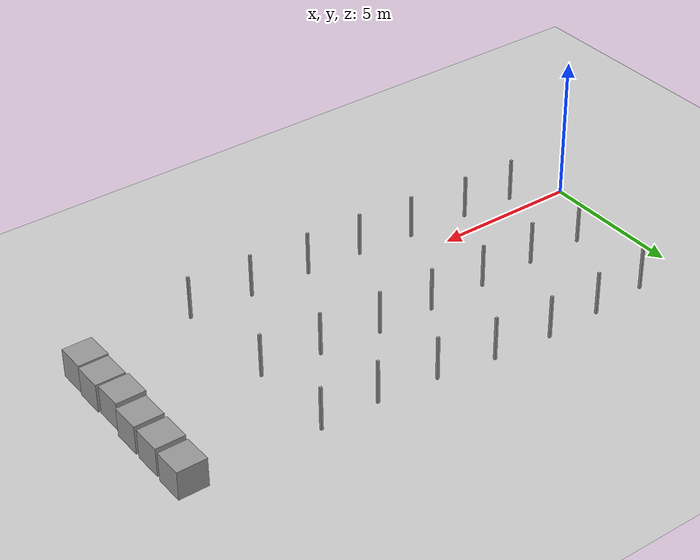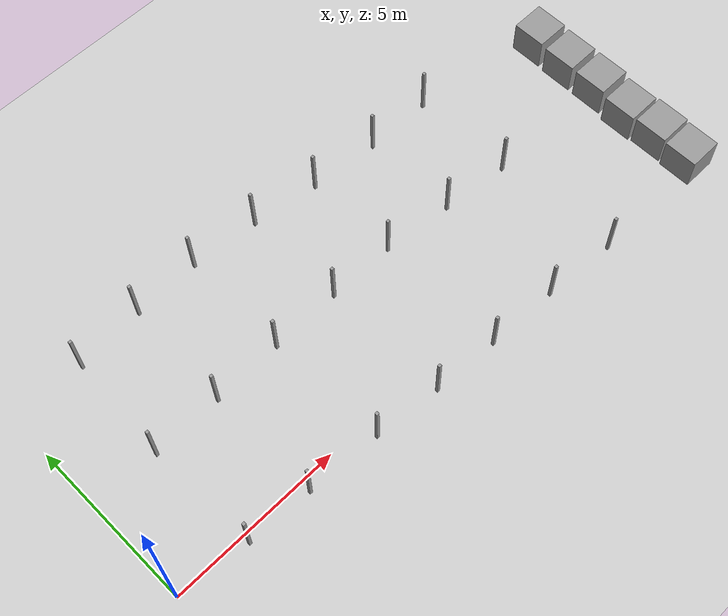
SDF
<sdf version="1.7">
 <world name="default">
  <light name="sun" type="directional">
   <pose>0 0 10 0 -0 0</pose>
   <diffuse>0.8 0.8 0.8 1</diffuse>
   <specular>0.2 0.2 0.2 1</specular>
   <attenuation>
    <range>1000</range>
    <constant>0.9</constant>
    <linear>0.01</linear>
    <quadratic>0.001</quadratic>
   </attenuation>
   <direction>-0.5 0.1 -0.9</direction>
   <spot><inner_angle>0</inner_angle><outer_angle>0</outer_angle><falloff>0</falloff></spot>
  </light>
  <model name="ground_plane">
   <static>1</static>
   <link name="link">
    <collision name="collision">
     <geometry><plane><normal>0 0 1</normal><size>100 100</size></plane></geometry>
     <surface><friction><ode><mu>100</mu><mu2>50</mu2></ode></friction></surface>
    </collision>
    <visual name="visual">
     <cast_shadows>0</cast_shadows>
     <geometry><plane><normal>0 0 1</normal><size>100 100</size></plane></geometry>
     <material>
      <script><uri>file://media/materials/scripts/gazebo.material</uri><name>Gazebo/Grey</name></script>
     </material>
    </visual>
   </link>
  </model>
  <gravity>0 0 -9.8</gravity>
  <magnetic_field>6e-06 2.3e-05 -4.2e-05</magnetic_field>
  <atmosphere type="adiabatic"/>
  <physics type="dartsim">
   <max_step_size>0.001</max_step_size>
   <real_time_factor>1</real_time_factor>
   <real_time_update_rate>1000</real_time_update_rate>
  </physics>
  <scene><ambient>0.4 0.4 0.4 1</ambient><background>0.7 0.7 0.7 1</background><shadows>1</shadows></scene>
  <audio><device>default</device></audio>
  <spherical_coordinates>
   <surface_model>EARTH_WGS84</surface_model>
   <latitude_deg>0</latitude_deg>
   <longitude_deg>0</longitude_deg>
   <elevation>0</elevation>
   <heading_deg>0</heading_deg>
  </spherical_coordinates>
  <model name="unit_box">
   <pose>2.02821 -0.339734 1.0946 -1.2e-05 -3e-06 -0.003196</pose>
   <link name="link">
    <inertial>
     <mass>1</mass>
     <inertia>
      <ixx>0.166667</ixx>
      <ixy>0</ixy>
      <ixz>0</ixz>
      <iyy>0.166667</iyy>
      <iyz>0</iyz>
      <izz>0.166667</izz>
     </inertia>
    </inertial>
    <collision name="collision"><geometry><box><size>0.083 0.082 1.532</size></box></geometry></collision>
    <visual name="visual">
     <geometry><box><size>0.083 0.082 1.532</size></box></geometry>
     <material>
      <script><name>Gazebo/Grey</name><uri>file://media/materials/scripts/gazebo.material</uri></script>
     </material>
    </visual>
   </link>
  </model>
  <model name="unit_box_clone">
   <pose>3.91155 -0.438109 1.0946 1e-06 1e-06 -0.003518</pose>
   <link name="link">
    <inertial>
     <mass>1</mass>
     <inertia>
      <ixx>0.166667</ixx>
      <ixy>0</ixy>
      <ixz>0</ixz>
      <iyy>0.166667</iyy>
      <iyz>0</iyz>
      <izz>0.166667</izz>
     </inertia>
    </inertial>
    <collision name="collision"><geometry><box><size>0.083 0.082 1.532</size></box></geometry></collision>
    <visual name="visual">
     <geometry><box><size>0.083 0.082 1.532</size></box></geometry>
     <material>
      <script><name>Gazebo/Grey</name><uri>file://media/materials/scripts/gazebo.material</uri></script>
     </material>
    </visual>
   </link>
  </model>
  <model name="unit_box_clone_0">
   <pose>6.06004 -0.577232 1.0946 1e-06 3.1e-05 -0.001422</pose>
   <link name="link">
    <inertial>
     <mass>1</mass>
     <inertia>
      <ixx>0.166667</ixx>
      <ixy>0</ixy>
      <ixz>0</ixz>
      <iyy>0.166667</iyy>
      <iyz>0</iyz>
      <izz>0.166667</izz>
     </inertia>
    </inertial>
    <collision name="collision"><geometry><box><size>0.083 0.082 1.532</size></box></geometry></collision>
    <visual name="visual">
     <geometry><box><size>0.083 0.082 1.532</size></box></geometry>
     <material>
      <script><name>Gazebo/Grey</name><uri>file://media/materials/scripts/gazebo.material</uri></script>
     </material>
    </visual>
   </link>
  </model>
  <model name="unit_box_clone_1">
   <pose>8.0051 -0.770855 1.0946 6e-06 0 -0.001883</pose>
   <link name="link">
    <inertial>
     <mass>1</mass>
     <inertia>
      <ixx>0.166667</ixx>
      <ixy>0</ixy>
      <ixz>0</ixz>
      <iyy>0.166667</iyy>
      <iyz>0</iyz>
      <izz>0.166667</izz>
     </inertia>
    </inertial>
    <collision name="collision"><geometry><box><size>0.083 0.082 1.532</size></box></geometry></collision>
    <visual name="visual">
     <geometry><box><size>0.083 0.082 1.532</size></box></geometry>
     <material>
      <script><name>Gazebo/Grey</name><uri>file://media/materials/scripts/gazebo.material</uri></script>
     </material>
    </visual>
   </link>
  </model>
  <model name="unit_box_clone_2">
   <pose>9.95016 -0.887959 1.0946 -1e-06 -3e-06 -0.002604</pose>
   <link name="link">
    <inertial>
     <mass>1</mass>
     <inertia>
      <ixx>0.166667</ixx>
      <ixy>0</ixy>
      <ixz>0</ixz>
      <iyy>0.166667</iyy>
      <iyz>0</iyz>
      <izz>0.166667</izz>
     </inertia>
    </inertial>
    <collision name="collision"><geometry><box><size>0.083 0.082 1.532</size></box></geometry></collision>
    <visual name="visual">
     <geometry><box><size>0.083 0.082 1.532</size></box></geometry>
     <material>
      <script><name>Gazebo/Grey</name><uri>file://media/materials/scripts/gazebo.material</uri></script>
     </material>
    </visual>
   </link>
  </model>
  <model name="unit_box_clone_3">
   <pose>12.0514 -0.969661 1.0946 3.1e-05 1e-06 -0.003516</pose>
   <link name="link">
    <inertial>
     <mass>1</mass>
     <inertia>
      <ixx>0.166667</ixx>
      <ixy>0</ixy>
      <ixz>0</ixz>
      <iyy>0.166667</iyy>
      <iyz>0</iyz>
      <izz>0.166667</izz>
     </inertia>
    </inertial>
    <collision name="collision"><geometry><box><size>0.083 0.082 1.532</size></box></geometry></collision>
    <visual name="visual">
     <geometry><box><size>0.083 0.082 1.532</size></box></geometry>
     <material>
      <script><name>Gazebo/Grey</name><uri>file://media/materials/scripts/gazebo.material</uri></script>
     </material>
    </visual>
   </link>
  </model>
  <model name="unit_box_clone_4">
   <pose>14.192 -1.13159 1.0946 3e-06 0 -0.002015</pose>
   <link name="link">
    <inertial>
     <mass>1</mass>
     <inertia>
      <ixx>0.166667</ixx>
      <ixy>0</ixy>
      <ixz>0</ixz>
      <iyy>0.166667</iyy>
      <iyz>0</iyz>
      <izz>0.166667</izz>
     </inertia>
    </inertial>
    <collision name="collision"><geometry><box><size>0.083 0.082 1.532</size></box></geometry></collision>
    <visual name="visual">
     <geometry><box><size>0.083 0.082 1.532</size></box></geometry>
     <material>
      <script><name>Gazebo/Grey</name><uri>file://media/materials/scripts/gazebo.material</uri></script>
     </material>
    </visual>
   </link>
  </model>
  <model name="unit_box_clone_5">
   <pose>1.90923 2.92163 1.09459 -4e-06 1e-06 -0.00242</pose>
   <link name="link">
    <inertial>
     <mass>1</mass>
     <inertia>
      <ixx>0.166667</ixx>
      <ixy>0</ixy>
      <ixz>0</ixz>
      <iyy>0.166667</iyy>
      <iyz>0</iyz>
      <izz>0.166667</izz>
     </inertia>
    </inertial>
    <collision name="collision"><geometry><box><size>0.083 0.082 1.532</size></box></geometry></collision>
    <visual name="visual">
     <geometry><box><size>0.083 0.082 1.532</size></box></geometry>
     <material>
      <script><name>Gazebo/Grey</name><uri>file://media/materials/scripts/gazebo.material</uri></script>
     </material>
    </visual>
   </link>
  </model>
  <model name="unit_box_clone_6">
   <pose>3.92237 2.93179 1.0946 3e-06 -0 -0.004524</pose>
   <link name="link">
    <inertial>
     <mass>1</mass>
     <inertia>
      <ixx>0.166667</ixx>
      <ixy>0</ixy>
      <ixz>0</ixz>
      <iyy>0.166667</iyy>
      <iyz>0</iyz>
      <izz>0.166667</izz>
     </inertia>
    </inertial>
    <collision name="collision"><geometry><box><size>0.083 0.082 1.532</size></box></geometry></collision>
    <visual name="visual">
     <geometry><box><size>0.083 0.082 1.532</size></box></geometry>
     <material>
      <script><name>Gazebo/Grey</name><uri>file://media/materials/scripts/gazebo.material</uri></script>
     </material>
    </visual>
   </link>
  </model>
  <model name="unit_box_clone_7">
   <pose>5.96155 2.97254 1.0946 -2e-05 -1.9e-05 -0.003147</pose>
   <link name="link">
    <inertial>
     <mass>1</mass>
     <inertia>
      <ixx>0.166667</ixx>
      <ixy>0</ixy>
      <ixz>0</ixz>
      <iyy>0.166667</iyy>
      <iyz>0</iyz>
      <izz>0.166667</izz>
     </inertia>
    </inertial>
    <collision name="collision"><geometry><box><size>0.083 0.082 1.532</size></box></geometry></collision>
    <visual name="visual">
     <geometry><box><size>0.083 0.082 1.532</size></box></geometry>
     <material>
      <script><name>Gazebo/Grey</name><uri>file://media/materials/scripts/gazebo.material</uri></script>
     </material>
    </visual>
   </link>
  </model>
  <model name="unit_box_clone_8">
   <pose>8.01955 2.99097 1.0946 -6e-06 -0 -0.003515</pose>
   <link name="link">
    <inertial>
     <mass>1</mass>
     <inertia>
      <ixx>0.166667</ixx>
      <ixy>0</ixy>
      <ixz>0</ixz>
      <iyy>0.166667</iyy>
      <iyz>0</iyz>
      <izz>0.166667</izz>
     </inertia>
    </inertial>
    <collision name="collision"><geometry><box><size>0.083 0.082 1.532</size></box></geometry></collision>
    <visual name="visual">
     <geometry><box><size>0.083 0.082 1.532</size></box></geometry>
     <material>
      <script><name>Gazebo/Grey</name><uri>file://media/materials/scripts/gazebo.material</uri></script>
     </material>
    </visual>
   </link>
  </model>
  <model name="unit_box_clone_9">
   <pose>9.99926 2.97751 1.0946 -6e-06 1e-06 -0.002594</pose>
   <link name="link">
    <inertial>
     <mass>1</mass>
     <inertia>
      <ixx>0.166667</ixx>
      <ixy>0</ixy>
      <ixz>0</ixz>
      <iyy>0.166667</iyy>
      <iyz>0</iyz>
      <izz>0.166667</izz>
     </inertia>
    </inertial>
    <collision name="collision"><geometry><box><size>0.083 0.082 1.532</size></box></geometry></collision>
    <visual name="visual">
     <geometry><box><size>0.083 0.082 1.532</size></box></geometry>
     <material>
      <script><name>Gazebo/Grey</name><uri>file://media/materials/scripts/gazebo.material</uri></script>
     </material>
    </visual>
   </link>
  </model>
  <model name="unit_box_clone_10">
   <pose>12.0493 2.75718 1.09459 1e-06 -0 -0.002268</pose>
   <link name="link">
    <inertial>
     <mass>1</mass>
     <inertia>
      <ixx>0.166667</ixx>
      <ixy>0</ixy>
      <ixz>0</ixz>
      <iyy>0.166667</iyy>
      <iyz>0</iyz>
      <izz>0.166667</izz>
     </inertia>
    </inertial>
    <collision name="collision"><geometry><box><size>0.083 0.082 1.532</size></box></geometry></collision>
    <visual name="visual">
     <geometry><box><size>0.083 0.082 1.532</size></box></geometry>
     <material>
      <script><name>Gazebo/Grey</name><uri>file://media/materials/scripts/gazebo.material</uri></script>
     </material>
    </visual>
   </link>
  </model>
  <model name="unit_box_clone_5_clone">
   <pose>2.08922 6.05099 1.0946 2e-06 -0 -0.002539</pose>
   <link name="link">
    <inertial>
     <mass>1</mass>
     <inertia>
      <ixx>0.166667</ixx>
      <ixy>0</ixy>
      <ixz>0</ixz>
      <iyy>0.166667</iyy>
      <iyz>0</iyz>
      <izz>0.166667</izz>
     </inertia>
    </inertial>
    <collision name="collision"><geometry><box><size>0.083 0.082 1.532</size></box></geometry></collision>
    <visual name="visual">
     <geometry><box><size>0.083 0.082 1.532</size></box></geometry>
     <material>
      <script><name>Gazebo/Grey</name><uri>file://media/materials/scripts/gazebo.material</uri></script>
     </material>
    </visual>
   </link>
  </model>
  <model name="unit_box_clone_5_clone_0">
   <pose>4.08354 6.20992 1.0946 -1e-06 -0 -0.003001</pose>
   <link name="link">
    <inertial>
     <mass>1</mass>
     <inertia>
      <ixx>0.166667</ixx>
      <ixy>0</ixy>
      <ixz>0</ixz>
      <iyy>0.166667</iyy>
      <iyz>0</iyz>
      <izz>0.166667</izz>
     </inertia>
    </inertial>
    <collision name="collision"><geometry><box><size>0.083 0.082 1.532</size></box></geometry></collision>
    <visual name="visual">
     <geometry><box><size>0.083 0.082 1.532</size></box></geometry>
     <material>
      <script><name>Gazebo/Grey</name><uri>file://media/materials/scripts/gazebo.material</uri></script>
     </material>
    </visual>
   </link>
  </model>
  <model name="unit_box_clone_5_clone_1">
   <pose>6.03045 6.25667 1.0946 -1e-06 -4e-06 -0.002378</pose>
   <link name="link">
    <inertial>
     <mass>1</mass>
     <inertia>
      <ixx>0.166667</ixx>
      <ixy>0</ixy>
      <ixz>0</ixz>
      <iyy>0.166667</iyy>
      <iyz>0</iyz>
      <izz>0.166667</izz>
     </inertia>
    </inertial>
    <collision name="collision"><geometry><box><size>0.083 0.082 1.532</size></box></geometry></collision>
    <visual name="visual">
     <geometry><box><size>0.083 0.082 1.532</size></box></geometry>
     <material>
      <script><name>Gazebo/Grey</name><uri>file://media/materials/scripts/gazebo.material</uri></script>
     </material>
    </visual>
   </link>
  </model>
  <model name="unit_box_clone_5_clone_2">
   <pose>8.03584 6.07501 1.0946 -1e-06 4e-06 -0.003092</pose>
   <link name="link">
    <inertial>
     <mass>1</mass>
     <inertia>
      <ixx>0.166667</ixx>
      <ixy>0</ixy>
      <ixz>0</ixz>
      <iyy>0.166667</iyy>
      <iyz>0</iyz>
      <izz>0.166667</izz>
     </inertia>
    </inertial>
    <collision name="collision"><geometry><box><size>0.083 0.082 1.532</size></box></geometry></collision>
    <visual name="visual">
     <geometry><box><size>0.083 0.082 1.532</size></box></geometry>
     <material>
      <script><name>Gazebo/Grey</name><uri>file://media/materials/scripts/gazebo.material</uri></script>
     </material>
    </visual>
   </link>
  </model>
  <model name="unit_box_clone_5_clone_3">
   <pose>9.99178 5.77893 1.0946 5e-06 -0 -0.004009</pose>
   <link name="link">
    <inertial>
     <mass>1</mass>
     <inertia>
      <ixx>0.166667</ixx>
      <ixy>0</ixy>
      <ixz>0</ixz>
      <iyy>0.166667</iyy>
      <iyz>0</iyz>
      <izz>0.166667</izz>
     </inertia>
    </inertial>
    <collision name="collision"><geometry><box><size>0.083 0.082 1.532</size></box></geometry></collision>
    <visual name="visual">
     <geometry><box><size>0.083 0.082 1.532</size></box></geometry>
     <material>
      <script><name>Gazebo/Grey</name><uri>file://media/materials/scripts/gazebo.material</uri></script>
     </material>
    </visual>
   </link>
  </model>
  <model name="unit_box_clone_5_clone_4">
   <pose>12.0418 5.60224 1.0946 1e-06 1e-06 -0.001941</pose>
   <link name="link">
    <inertial>
     <mass>1</mass>
     <inertia>
      <ixx>0.166667</ixx>
      <ixy>0</ixy>
      <ixz>0</ixz>
      <iyy>0.166667</iyy>
      <iyz>0</iyz>
      <izz>0.166667</izz>
     </inertia>
    </inertial>
    <collision name="collision"><geometry><box><size>0.083 0.082 1.532</size></box></geometry></collision>
    <visual name="visual">
     <geometry><box><size>0.083 0.082 1.532</size></box></geometry>
     <material>
      <script><name>Gazebo/Grey</name><uri>file://media/materials/scripts/gazebo.material</uri></script>
     </material>
    </visual>
   </link>
  </model>
  <model name="unit_box_clone_5_clone_5">
   <pose>14.0437 2.54904 1.09459 -1e-06 4e-06 -0.001746</pose>
   <link name="link">
    <inertial>
     <mass>1</mass>
     <inertia>
      <ixx>0.166667</ixx>
      <ixy>0</ixy>
      <ixz>0</ixz>
      <iyy>0.166667</iyy>
      <iyz>0</iyz>
      <izz>0.166667</izz>
     </inertia>
    </inertial>
    <collision name="collision"><geometry><box><size>0.083 0.082 1.532</size></box></geometry></collision>
    <visual name="visual">
     <geometry><box><size>0.083 0.082 1.532</size></box></geometry>
     <material>
      <script><name>Gazebo/Grey</name><uri>file://media/materials/scripts/gazebo.material</uri></script>
     </material>
    </visual>
   </link>
  </model>
  <model name="unit_box_clone_5_clone_6">
   <pose>14.0302 5.58795 1.0946 1e-06 -1.1e-05 -0.003414</pose>
   <link name="link">
    <inertial>
     <mass>1</mass>
     <inertia>
      <ixx>0.166667</ixx>
      <ixy>0</ixy>
      <ixz>0</ixz>
      <iyy>0.166667</iyy>
      <iyz>0</iyz>
      <izz>0.166667</izz>
     </inertia>
    </inertial>
    <collision name="collision"><geometry><box><size>0.083 0.082 1.532</size></box></geometry></collision>
    <visual name="visual">
     <geometry><box><size>0.083 0.082 1.532</size></box></geometry>
     <material>
      <script><name>Gazebo/Grey</name><uri>file://media/materials/scripts/gazebo.material</uri></script>
     </material>
    </visual>
   </link>
  </model>
  <light name="user_point_light_0" type="point">
   <pose>-16.4802 -0.898698 1 0 -0 0</pose>
   <diffuse>0.5 0.5 0.5 1</diffuse>
   <specular>0.1 0.1 0.1 1</specular>
   <attenuation>
    <range>20</range>
    <constant>0.5</constant>
    <linear>0.01</linear>
    <quadratic>0.001</quadratic>
   </attenuation>
   <cast_shadows>0</cast_shadows>
   <direction>0 0 -1</direction>
   <spot><inner_angle>0</inner_angle><outer_angle>0</outer_angle><falloff>0</falloff></spot>
  </light>
  <model name="unit_box_0">
   <pose>17.9958 -0.816015 0.499995 1e-05 -0 0</pose>
   <link name="link">
    <inertial>
     <mass>1</mass>
     <inertia>
      <ixx>0.166667</ixx>
      <ixy>0</ixy>
      <ixz>0</ixz>
      <iyy>0.166667</iyy>
      <iyz>0</iyz>
      <izz>0.166667</izz>
     </inertia>
    </inertial>
    <collision name="collision"><geometry><box><size>1 1 1</size></box></geometry></collision>
    <visual name="visual">
     <geometry><box><size>1 1 1</size></box></geometry>
     <material>
      <script><name>Gazebo/Grey</name><uri>file://media/materials/scripts/gazebo.material</uri></script>
     </material>
    </visual>
   </link>
  </model>
  <model name="unit_box_0_clone">
   <pose>18.0396 0.260441 0.499995 0 1e-05 0</pose>
   <link name="link">
    <inertial>
     <mass>1</mass>
     <inertia>
      <ixx>0.166667</ixx>
      <ixy>0</ixy>
      <ixz>0</ixz>
      <iyy>0.166667</iyy>
      <iyz>0</iyz>
      <izz>0.166667</izz>
     </inertia>
    </inertial>
    <collision name="collision"><geometry><box><size>1 1 1</size></box></geometry></collision>
    <visual name="visual">
     <geometry><box><size>1 1 1</size></box></geometry>
     <material>
      <script><name>Gazebo/Grey</name><uri>file://media/materials/scripts/gazebo.material</uri></script>
     </material>
    </visual>
   </link>
  </model>
  <model name="unit_box_0_clone_0">
   <pose>17.9897 1.33336 0.499995 -1e-05 -0 -0</pose>
   <link name="link">
    <inertial>
     <mass>1</mass>
     <inertia>
      <ixx>0.166667</ixx>
      <ixy>0</ixy>
      <ixz>0</ixz>
      <iyy>0.166667</iyy>
      <iyz>0</iyz>
      <izz>0.166667</izz>
     </inertia>
    </inertial>
    <collision name="collision"><geometry><box><size>1 1 1</size></box></geometry></collision>
    <visual name="visual">
     <geometry><box><size>1 1 1</size></box></geometry>
     <material>
      <script><name>Gazebo/Grey</name><uri>file://media/materials/scripts/gazebo.material</uri></script>
     </material>
    </visual>
   </link>
  </model>
  <model name="unit_box_0_clone_1">
   <pose>18.0984 2.51187 0.499995 0 1e-05 0</pose>
   <link name="link">
    <inertial>
     <mass>1</mass>
     <inertia>
      <ixx>0.166667</ixx>
      <ixy>0</ixy>
      <ixz>0</ixz>
      <iyy>0.166667</iyy>
      <iyz>0</iyz>
      <izz>0.166667</izz>
     </inertia>
    </inertial>
    <collision name="collision"><geometry><box><size>1 1 1</size></box></geometry></collision>
    <visual name="visual">
     <geometry><box><size>1 1 1</size></box></geometry>
     <material>
      <script><name>Gazebo/Grey</name><uri>file://media/materials/scripts/gazebo.material</uri></script>
     </material>
    </visual>
   </link>
  </model>
  <model name="unit_box_0_clone_2">
   <pose>18.1068 3.67292 0.499995 0 1e-05 0</pose>
   <link name="link">
    <inertial>
     <mass>1</mass>
     <inertia>
      <ixx>0.166667</ixx>
      <ixy>0</ixy>
      <ixz>0</ixz>
      <iyy>0.166667</iyy>
      <iyz>0</iyz>
      <izz>0.166667</izz>
     </inertia>
    </inertial>
    <collision name="collision"><geometry><box><size>1 1 1</size></box></geometry></collision>
    <visual name="visual">
     <geometry><box><size>1 1 1</size></box></geometry>
     <material>
      <script><name>Gazebo/Grey</name><uri>file://media/materials/scripts/gazebo.material</uri></script>
     </material>
    </visual>
   </link>
  </model>
  <model name="unit_box_0_clone_3">
   <pose>18.142 4.85304 0.499995 1e-05 -0 0</pose>
   <link name="link">
    <inertial>
     <mass>1</mass>
     <inertia>
      <ixx>0.166667</ixx>
      <ixy>0</ixy>
      <ixz>0</ixz>
      <iyy>0.166667</iyy>
      <iyz>0</iyz>
      <izz>0.166667</izz>
     </inertia>
    </inertial>
    <collision name="collision"><geometry><box><size>1 1 1</size></box></geometry></collision>
    <visual name="visual">
     <geometry><box><size>1 1 1</size></box></geometry>
     <material>
      <script><name>Gazebo/Grey</name><uri>file://media/materials/scripts/gazebo.material</uri></script>
     </material>
    </visual>
   </link>
  </model>
 </world>
</sdf>
